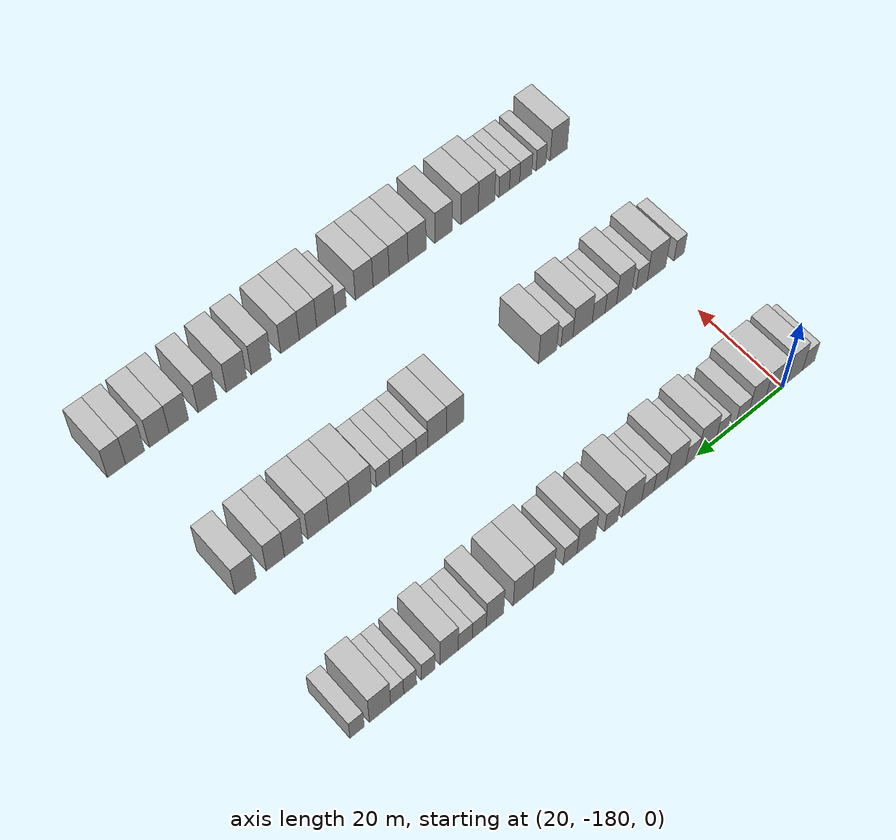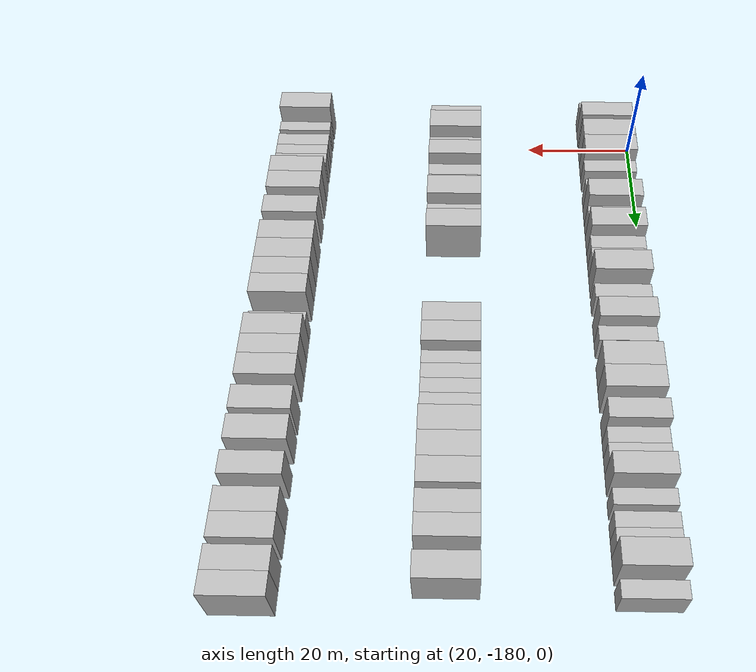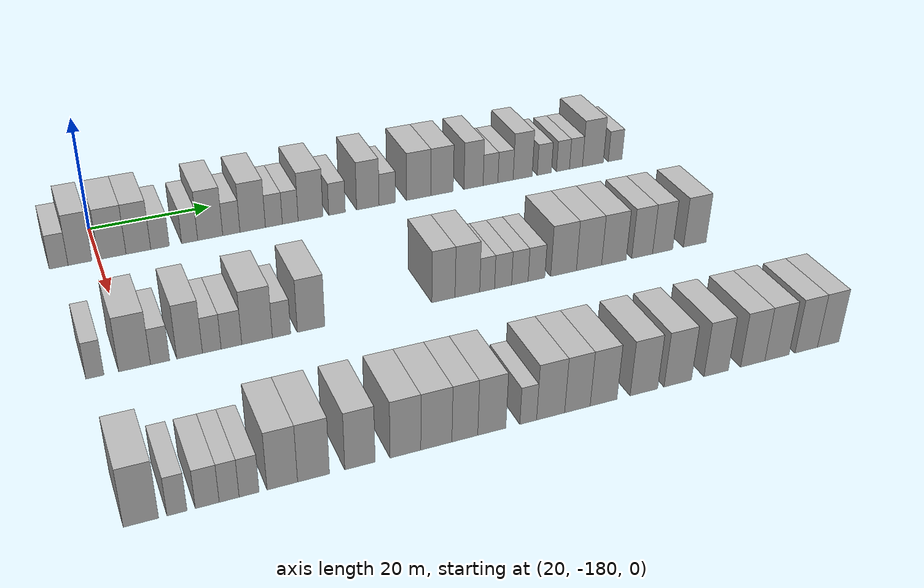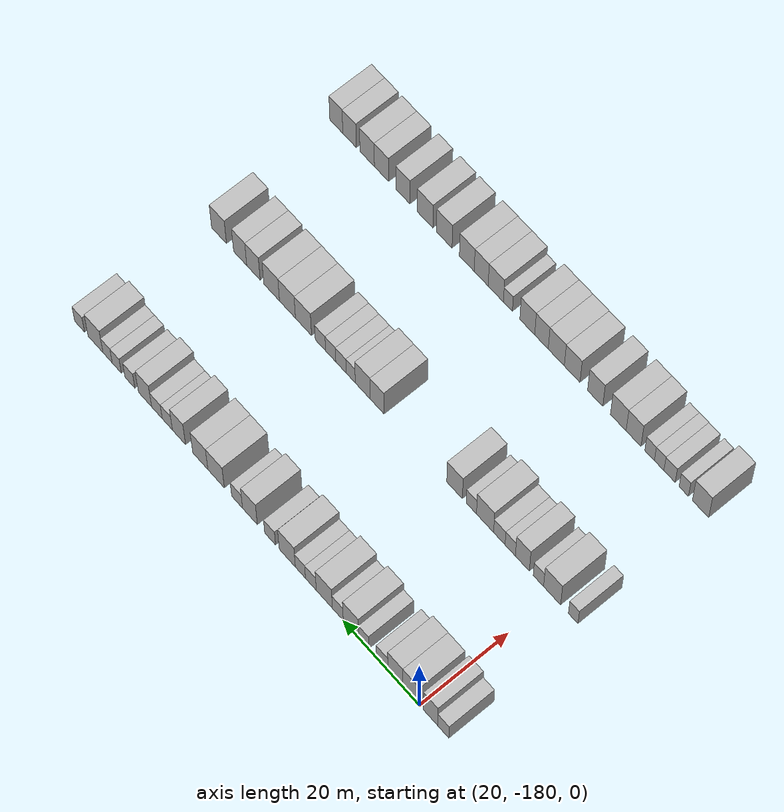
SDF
<sdf version="1.6">
 <world name="default">
  <model name="building_25">
   <static>1</static>
   <pose>25.0000 -186.1786 0 0.000000 0.000000 0.000000</pose>
   <link name="link">
    <pose>0 0 3.00 0 0 0</pose>
    <collision name="collision"><geometry><box><size>10.0000 2.8938 6.0000</size></box></geometry></collision>
    <visual name="visual">
     <cast_shadows>0</cast_shadows>
     <geometry><box><size>10.0000 2.8938 6.0000</size></box></geometry>
     <material>
      <script>
       <uri>model://HANNAS_wall/materials/scripts</uri>
       <uri>model://HANNAS_wall/materials/textures</uri>
       <name>vrc/HANNAS_wall</name>
      </script>
     </material>
    </visual>
   </link>
  </model>
  <model name="building_26">
   <static>1</static>
   <pose>25.0000 -182.8874 0 0.000000 0.000000 0.000000</pose>
   <link name="link">
    <pose>0 0 4.50 0 0 0</pose>
    <collision name="collision"><geometry><box><size>10.0000 3.6885 9.0000</size></box></geometry></collision>
    <visual name="visual">
     <cast_shadows>0</cast_shadows>
     <geometry><box><size>10.0000 3.6885 9.0000</size></box></geometry>
     <material>
      <script>
       <uri>model://HANNAS_wall/materials/scripts</uri>
       <uri>model://HANNAS_wall/materials/textures</uri>
       <name>vrc/HANNAS_wall</name>
      </script>
     </material>
    </visual>
   </link>
  </model>
  <model name="building_27">
   <static>1</static>
   <pose>25.0000 -177.8698 0 0.000000 0.000000 0.000000</pose>
   <link name="link">
    <pose>0 0 4.50 0 0 0</pose>
    <collision name="collision"><geometry><box><size>10.0000 4.3468 9.0000</size></box></geometry></collision>
    <visual name="visual">
     <cast_shadows>0</cast_shadows>
     <geometry><box><size>10.0000 4.3468 9.0000</size></box></geometry>
     <material>
      <script>
       <uri>model://HANNAS_wall/materials/scripts</uri>
       <uri>model://HANNAS_wall/materials/textures</uri>
       <name>vrc/HANNAS_wall</name>
      </script>
     </material>
    </visual>
   </link>
  </model>
  <model name="building_28">
   <static>1</static>
   <pose>25.0000 -173.7348 0 0.000000 0.000000 0.000000</pose>
   <link name="link">
    <pose>0 0 4.50 0 0 0</pose>
    <collision name="collision"><geometry><box><size>10.0000 3.9231 9.0000</size></box></geometry></collision>
    <visual name="visual">
     <cast_shadows>0</cast_shadows>
     <geometry><box><size>10.0000 3.9231 9.0000</size></box></geometry>
     <material>
      <script>
       <uri>model://HANNAS_wall/materials/scripts</uri>
       <uri>model://HANNAS_wall/materials/textures</uri>
       <name>vrc/HANNAS_wall</name>
      </script>
     </material>
    </visual>
   </link>
  </model>
  <model name="building_29">
   <static>1</static>
   <pose>25.0000 -170.2793 0 0.000000 0.000000 0.000000</pose>
   <link name="link">
    <pose>0 0 3.00 0 0 0</pose>
    <collision name="collision"><geometry><box><size>10.0000 2.9881 6.0000</size></box></geometry></collision>
    <visual name="visual">
     <cast_shadows>0</cast_shadows>
     <geometry><box><size>10.0000 2.9881 6.0000</size></box></geometry>
     <material>
      <script>
       <uri>model://HANNAS_wall/materials/scripts</uri>
       <uri>model://HANNAS_wall/materials/textures</uri>
       <name>vrc/HANNAS_wall</name>
      </script>
     </material>
    </visual>
   </link>
  </model>
  <model name="building_30">
   <static>1</static>
   <pose>25.0000 -165.4775 0 0.000000 0.000000 0.000000</pose>
   <link name="link">
    <pose>0 0 3.00 0 0 0</pose>
    <collision name="collision"><geometry><box><size>10.0000 2.6154 6.0000</size></box></geometry></collision>
    <visual name="visual">
     <cast_shadows>0</cast_shadows>
     <geometry><box><size>10.0000 2.6154 6.0000</size></box></geometry>
     <material>
      <script>
       <uri>model://HANNAS_wall/materials/scripts</uri>
       <uri>model://HANNAS_wall/materials/textures</uri>
       <name>vrc/HANNAS_wall</name>
      </script>
     </material>
    </visual>
   </link>
  </model>
  <model name="building_31">
   <static>1</static>
   <pose>25.0000 -162.1044 0 0.000000 0.000000 0.000000</pose>
   <link name="link">
    <pose>0 0 4.50 0 0 0</pose>
    <collision name="collision"><geometry><box><size>10.0000 4.1307 9.0000</size></box></geometry></collision>
    <visual name="visual">
     <cast_shadows>0</cast_shadows>
     <geometry><box><size>10.0000 4.1307 9.0000</size></box></geometry>
     <material>
      <script>
       <uri>model://HANNAS_wall/materials/scripts</uri>
       <uri>model://HANNAS_wall/materials/textures</uri>
       <name>vrc/HANNAS_wall</name>
      </script>
     </material>
    </visual>
   </link>
  </model>
  <model name="building_32">
   <static>1</static>
   <pose>25.0000 -158.6034 0 0.000000 0.000000 0.000000</pose>
   <link name="link">
    <pose>0 0 3.00 0 0 0</pose>
    <collision name="collision"><geometry><box><size>10.0000 2.8714 6.0000</size></box></geometry></collision>
    <visual name="visual">
     <cast_shadows>0</cast_shadows>
     <geometry><box><size>10.0000 2.8714 6.0000</size></box></geometry>
     <material>
      <script>
       <uri>model://HANNAS_wall/materials/scripts</uri>
       <uri>model://HANNAS_wall/materials/textures</uri>
       <name>vrc/HANNAS_wall</name>
      </script>
     </material>
    </visual>
   </link>
  </model>
  <model name="building_33">
   <static>1</static>
   <pose>25.0000 -155.0268 0 0.000000 0.000000 0.000000</pose>
   <link name="link">
    <pose>0 0 4.50 0 0 0</pose>
    <collision name="collision"><geometry><box><size>10.0000 4.2817 9.0000</size></box></geometry></collision>
    <visual name="visual">
     <cast_shadows>0</cast_shadows>
     <geometry><box><size>10.0000 4.2817 9.0000</size></box></geometry>
     <material>
      <script>
       <uri>model://HANNAS_wall/materials/scripts</uri>
       <uri>model://HANNAS_wall/materials/textures</uri>
       <name>vrc/HANNAS_wall</name>
      </script>
     </material>
    </visual>
   </link>
  </model>
  <model name="building_34">
   <static>1</static>
   <pose>25.0000 -151.4418 0 0.000000 0.000000 0.000000</pose>
   <link name="link">
    <pose>0 0 3.00 0 0 0</pose>
    <collision name="collision"><geometry><box><size>10.0000 2.8883 6.0000</size></box></geometry></collision>
    <visual name="visual">
     <cast_shadows>0</cast_shadows>
     <geometry><box><size>10.0000 2.8883 6.0000</size></box></geometry>
     <material>
      <script>
       <uri>model://HANNAS_wall/materials/scripts</uri>
       <uri>model://HANNAS_wall/materials/textures</uri>
       <name>vrc/HANNAS_wall</name>
      </script>
     </material>
    </visual>
   </link>
  </model>
  <model name="building_35">
   <static>1</static>
   <pose>25.0000 -148.6420 0 0.000000 0.000000 0.000000</pose>
   <link name="link">
    <pose>0 0 3.00 0 0 0</pose>
    <collision name="collision"><geometry><box><size>10.0000 2.7115 6.0000</size></box></geometry></collision>
    <visual name="visual">
     <cast_shadows>0</cast_shadows>
     <geometry><box><size>10.0000 2.7115 6.0000</size></box></geometry>
     <material>
      <script>
       <uri>model://HANNAS_wall/materials/scripts</uri>
       <uri>model://HANNAS_wall/materials/textures</uri>
       <name>vrc/HANNAS_wall</name>
      </script>
     </material>
    </visual>
   </link>
  </model>
  <model name="building_36">
   <static>1</static>
   <pose>25.0000 -145.1295 0 0.000000 0.000000 0.000000</pose>
   <link name="link">
    <pose>0 0 4.50 0 0 0</pose>
    <collision name="collision"><geometry><box><size>10.0000 4.3134 9.0000</size></box></geometry></collision>
    <visual name="visual">
     <cast_shadows>0</cast_shadows>
     <geometry><box><size>10.0000 4.3134 9.0000</size></box></geometry>
     <material>
      <script>
       <uri>model://HANNAS_wall/materials/scripts</uri>
       <uri>model://HANNAS_wall/materials/textures</uri>
       <name>vrc/HANNAS_wall</name>
      </script>
     </material>
    </visual>
   </link>
  </model>
  <model name="building_37">
   <static>1</static>
   <pose>25.0000 -140.5147 0 0.000000 0.000000 0.000000</pose>
   <link name="link">
    <pose>0 0 3.00 0 0 0</pose>
    <collision name="collision"><geometry><box><size>10.0000 2.9162 6.0000</size></box></geometry></collision>
    <visual name="visual">
     <cast_shadows>0</cast_shadows>
     <geometry><box><size>10.0000 2.9162 6.0000</size></box></geometry>
     <material>
      <script>
       <uri>model://HANNAS_wall/materials/scripts</uri>
       <uri>model://HANNAS_wall/materials/textures</uri>
       <name>vrc/HANNAS_wall</name>
      </script>
     </material>
    </visual>
   </link>
  </model>
  <model name="building_38">
   <static>1</static>
   <pose>25.0000 -135.0496 0 0.000000 0.000000 0.000000</pose>
   <link name="link">
    <pose>0 0 4.50 0 0 0</pose>
    <collision name="collision"><geometry><box><size>10.0000 4.0140 9.0000</size></box></geometry></collision>
    <visual name="visual">
     <cast_shadows>0</cast_shadows>
     <geometry><box><size>10.0000 4.0140 9.0000</size></box></geometry>
     <material>
      <script>
       <uri>model://HANNAS_wall/materials/scripts</uri>
       <uri>model://HANNAS_wall/materials/textures</uri>
       <name>vrc/HANNAS_wall</name>
      </script>
     </material>
    </visual>
   </link>
  </model>
  <model name="building_39">
   <static>1</static>
   <pose>25.0000 -131.5666 0 0.000000 0.000000 0.000000</pose>
   <link name="link">
    <pose>0 0 3.00 0 0 0</pose>
    <collision name="collision"><geometry><box><size>10.0000 2.9519 6.0000</size></box></geometry></collision>
    <visual name="visual">
     <cast_shadows>0</cast_shadows>
     <geometry><box><size>10.0000 2.9519 6.0000</size></box></geometry>
     <material>
      <script>
       <uri>model://HANNAS_wall/materials/scripts</uri>
       <uri>model://HANNAS_wall/materials/textures</uri>
       <name>vrc/HANNAS_wall</name>
      </script>
     </material>
    </visual>
   </link>
  </model>
  <model name="building_40">
   <static>1</static>
   <pose>25.0000 -125.8427 0 0.000000 0.000000 0.000000</pose>
   <link name="link">
    <pose>0 0 4.50 0 0 0</pose>
    <collision name="collision"><geometry><box><size>10.0000 4.4959 9.0000</size></box></geometry></collision>
    <visual name="visual">
     <cast_shadows>0</cast_shadows>
     <geometry><box><size>10.0000 4.4959 9.0000</size></box></geometry>
     <material>
      <script>
       <uri>model://HANNAS_wall/materials/scripts</uri>
       <uri>model://HANNAS_wall/materials/textures</uri>
       <name>vrc/HANNAS_wall</name>
      </script>
     </material>
    </visual>
   </link>
  </model>
  <model name="building_41">
   <static>1</static>
   <pose>25.0000 -121.5187 0 0.000000 0.000000 0.000000</pose>
   <link name="link">
    <pose>0 0 4.50 0 0 0</pose>
    <collision name="collision"><geometry><box><size>10.0000 4.1522 9.0000</size></box></geometry></collision>
    <visual name="visual">
     <cast_shadows>0</cast_shadows>
     <geometry><box><size>10.0000 4.1522 9.0000</size></box></geometry>
     <material>
      <script>
       <uri>model://HANNAS_wall/materials/scripts</uri>
       <uri>model://HANNAS_wall/materials/textures</uri>
       <name>vrc/HANNAS_wall</name>
      </script>
     </material>
    </visual>
   </link>
  </model>
  <model name="building_42">
   <static>1</static>
   <pose>25.0000 -115.6287 0 0.000000 0.000000 0.000000</pose>
   <link name="link">
    <pose>0 0 4.50 0 0 0</pose>
    <collision name="collision"><geometry><box><size>10.0000 3.6277 9.0000</size></box></geometry></collision>
    <visual name="visual">
     <cast_shadows>0</cast_shadows>
     <geometry><box><size>10.0000 3.6277 9.0000</size></box></geometry>
     <material>
      <script>
       <uri>model://HANNAS_wall/materials/scripts</uri>
       <uri>model://HANNAS_wall/materials/textures</uri>
       <name>vrc/HANNAS_wall</name>
      </script>
     </material>
    </visual>
   </link>
  </model>
  <model name="building_43">
   <static>1</static>
   <pose>25.0000 -112.4005 0 0.000000 0.000000 0.000000</pose>
   <link name="link">
    <pose>0 0 3.00 0 0 0</pose>
    <collision name="collision"><geometry><box><size>10.0000 2.8288 6.0000</size></box></geometry></collision>
    <visual name="visual">
     <cast_shadows>0</cast_shadows>
     <geometry><box><size>10.0000 2.8288 6.0000</size></box></geometry>
     <material>
      <script>
       <uri>model://HANNAS_wall/materials/scripts</uri>
       <uri>model://HANNAS_wall/materials/textures</uri>
       <name>vrc/HANNAS_wall</name>
      </script>
     </material>
    </visual>
   </link>
  </model>
  <model name="building_44">
   <static>1</static>
   <pose>25.0000 -109.5195 0 0.000000 0.000000 0.000000</pose>
   <link name="link">
    <pose>0 0 3.00 0 0 0</pose>
    <collision name="collision"><geometry><box><size>10.0000 2.9333 6.0000</size></box></geometry></collision>
    <visual name="visual">
     <cast_shadows>0</cast_shadows>
     <geometry><box><size>10.0000 2.9333 6.0000</size></box></geometry>
     <material>
      <script>
       <uri>model://HANNAS_wall/materials/scripts</uri>
       <uri>model://HANNAS_wall/materials/textures</uri>
       <name>vrc/HANNAS_wall</name>
      </script>
     </material>
    </visual>
   </link>
  </model>
  <model name="building_45">
   <static>1</static>
   <pose>25.0000 -106.2048 0 0.000000 0.000000 0.000000</pose>
   <link name="link">
    <pose>0 0 4.50 0 0 0</pose>
    <collision name="collision"><geometry><box><size>10.0000 3.6961 9.0000</size></box></geometry></collision>
    <visual name="visual">
     <cast_shadows>0</cast_shadows>
     <geometry><box><size>10.0000 3.6961 9.0000</size></box></geometry>
     <material>
      <script>
       <uri>model://HANNAS_wall/materials/scripts</uri>
       <uri>model://HANNAS_wall/materials/textures</uri>
       <name>vrc/HANNAS_wall</name>
      </script>
     </material>
    </visual>
   </link>
  </model>
  <model name="building_46">
   <static>1</static>
   <pose>25.0000 -101.9693 0 0.000000 0.000000 0.000000</pose>
   <link name="link">
    <pose>0 0 3.00 0 0 0</pose>
    <collision name="collision"><geometry><box><size>10.0000 2.7748 6.0000</size></box></geometry></collision>
    <visual name="visual">
     <cast_shadows>0</cast_shadows>
     <geometry><box><size>10.0000 2.7748 6.0000</size></box></geometry>
     <material>
      <script>
       <uri>model://HANNAS_wall/materials/scripts</uri>
       <uri>model://HANNAS_wall/materials/textures</uri>
       <name>vrc/HANNAS_wall</name>
      </script>
     </material>
    </visual>
   </link>
  </model>
  <model name="building_47">
   <static>1</static>
   <pose>25.0000 -98.2931 0 0.000000 0.000000 0.000000</pose>
   <link name="link">
    <pose>0 0 3.00 0 0 0</pose>
    <collision name="collision"><geometry><box><size>10.0000 2.5775 6.0000</size></box></geometry></collision>
    <visual name="visual">
     <cast_shadows>0</cast_shadows>
     <geometry><box><size>10.0000 2.5775 6.0000</size></box></geometry>
     <material>
      <script>
       <uri>model://HANNAS_wall/materials/scripts</uri>
       <uri>model://HANNAS_wall/materials/textures</uri>
       <name>vrc/HANNAS_wall</name>
      </script>
     </material>
    </visual>
   </link>
  </model>
  <model name="building_48">
   <static>1</static>
   <pose>25.0000 -95.7023 0 0.000000 0.000000 0.000000</pose>
   <link name="link">
    <pose>0 0 3.00 0 0 0</pose>
    <collision name="collision"><geometry><box><size>10.0000 2.6042 6.0000</size></box></geometry></collision>
    <visual name="visual">
     <cast_shadows>0</cast_shadows>
     <geometry><box><size>10.0000 2.6042 6.0000</size></box></geometry>
     <material>
      <script>
       <uri>model://HANNAS_wall/materials/scripts</uri>
       <uri>model://HANNAS_wall/materials/textures</uri>
       <name>vrc/HANNAS_wall</name>
      </script>
     </material>
    </visual>
   </link>
  </model>
  <model name="building_49">
   <static>1</static>
   <pose>25.0000 -92.2917 0 0.000000 0.000000 0.000000</pose>
   <link name="link">
    <pose>0 0 4.50 0 0 0</pose>
    <collision name="collision"><geometry><box><size>10.0000 4.2170 9.0000</size></box></geometry></collision>
    <visual name="visual">
     <cast_shadows>0</cast_shadows>
     <geometry><box><size>10.0000 4.2170 9.0000</size></box></geometry>
     <material>
      <script>
       <uri>model://HANNAS_wall/materials/scripts</uri>
       <uri>model://HANNAS_wall/materials/textures</uri>
       <name>vrc/HANNAS_wall</name>
      </script>
     </material>
    </visual>
   </link>
  </model>
  <model name="building_50">
   <static>1</static>
   <pose>25.0000 -87.7814 0 0.000000 0.000000 0.000000</pose>
   <link name="link">
    <pose>0 0 3.00 0 0 0</pose>
    <collision name="collision"><geometry><box><size>10.0000 2.8037 6.0000</size></box></geometry></collision>
    <visual name="visual">
     <cast_shadows>0</cast_shadows>
     <geometry><box><size>10.0000 2.8037 6.0000</size></box></geometry>
     <material>
      <script>
       <uri>model://HANNAS_wall/materials/scripts</uri>
       <uri>model://HANNAS_wall/materials/textures</uri>
       <name>vrc/HANNAS_wall</name>
      </script>
     </material>
    </visual>
   </link>
  </model>
  <model name="building_168">
   <static>1</static>
   <pose>55.0000 -185.1621 0 0.000000 0.000000 0.000000</pose>
   <link name="link">
    <pose>0 0 3.00 0 0 0</pose>
    <collision name="collision"><geometry><box><size>10.0000 2.4634 6.0000</size></box></geometry></collision>
    <visual name="visual">
     <cast_shadows>0</cast_shadows>
     <geometry><box><size>10.0000 2.4634 6.0000</size></box></geometry>
     <material>
      <script>
       <uri>model://HANNAS_wall/materials/scripts</uri>
       <uri>model://HANNAS_wall/materials/textures</uri>
       <name>vrc/HANNAS_wall</name>
      </script>
     </material>
    </visual>
   </link>
  </model>
  <model name="building_169">
   <static>1</static>
   <pose>55.0000 -179.7270 0 0.000000 0.000000 0.000000</pose>
   <link name="link">
    <pose>0 0 4.50 0 0 0</pose>
    <collision name="collision"><geometry><box><size>10.0000 4.4068 9.0000</size></box></geometry></collision>
    <visual name="visual">
     <cast_shadows>0</cast_shadows>
     <geometry><box><size>10.0000 4.4068 9.0000</size></box></geometry>
     <material>
      <script>
       <uri>model://HANNAS_wall/materials/scripts</uri>
       <uri>model://HANNAS_wall/materials/textures</uri>
       <name>vrc/HANNAS_wall</name>
      </script>
     </material>
    </visual>
   </link>
  </model>
  <model name="building_170">
   <static>1</static>
   <pose>55.0000 -176.1809 0 0.000000 0.000000 0.000000</pose>
   <link name="link">
    <pose>0 0 3.00 0 0 0</pose>
    <collision name="collision"><geometry><box><size>10.0000 2.6854 6.0000</size></box></geometry></collision>
    <visual name="visual">
     <cast_shadows>0</cast_shadows>
     <geometry><box><size>10.0000 2.6854 6.0000</size></box></geometry>
     <material>
      <script>
       <uri>model://HANNAS_wall/materials/scripts</uri>
       <uri>model://HANNAS_wall/materials/textures</uri>
       <name>vrc/HANNAS_wall</name>
      </script>
     </material>
    </visual>
   </link>
  </model>
  <model name="building_171">
   <static>1</static>
   <pose>55.0000 -172.0138 0 0.000000 0.000000 0.000000</pose>
   <link name="link">
    <pose>0 0 4.50 0 0 0</pose>
    <collision name="collision"><geometry><box><size>10.0000 3.6489 9.0000</size></box></geometry></collision>
    <visual name="visual">
     <cast_shadows>0</cast_shadows>
     <geometry><box><size>10.0000 3.6489 9.0000</size></box></geometry>
     <material>
      <script>
       <uri>model://HANNAS_wall/materials/scripts</uri>
       <uri>model://HANNAS_wall/materials/textures</uri>
       <name>vrc/HANNAS_wall</name>
      </script>
     </material>
    </visual>
   </link>
  </model>
  <model name="building_172">
   <static>1</static>
   <pose>55.0000 -168.8469 0 0.000000 0.000000 0.000000</pose>
   <link name="link">
    <pose>0 0 3.00 0 0 0</pose>
    <collision name="collision"><geometry><box><size>10.0000 2.6848 6.0000</size></box></geometry></collision>
    <visual name="visual">
     <cast_shadows>0</cast_shadows>
     <geometry><box><size>10.0000 2.6848 6.0000</size></box></geometry>
     <material>
      <script>
       <uri>model://HANNAS_wall/materials/scripts</uri>
       <uri>model://HANNAS_wall/materials/textures</uri>
       <name>vrc/HANNAS_wall</name>
      </script>
     </material>
    </visual>
   </link>
  </model>
  <model name="building_173">
   <static>1</static>
   <pose>55.0000 -166.0068 0 0.000000 0.000000 0.000000</pose>
   <link name="link">
    <pose>0 0 3.00 0 0 0</pose>
    <collision name="collision"><geometry><box><size>10.0000 2.9954 6.0000</size></box></geometry></collision>
    <visual name="visual">
     <cast_shadows>0</cast_shadows>
     <geometry><box><size>10.0000 2.9954 6.0000</size></box></geometry>
     <material>
      <script>
       <uri>model://HANNAS_wall/materials/scripts</uri>
       <uri>model://HANNAS_wall/materials/textures</uri>
       <name>vrc/HANNAS_wall</name>
      </script>
     </material>
    </visual>
   </link>
  </model>
  <model name="building_174">
   <static>1</static>
   <pose>55.0000 -162.2619 0 0.000000 0.000000 0.000000</pose>
   <link name="link">
    <pose>0 0 4.50 0 0 0</pose>
    <collision name="collision"><geometry><box><size>10.0000 4.4943 9.0000</size></box></geometry></collision>
    <visual name="visual">
     <cast_shadows>0</cast_shadows>
     <geometry><box><size>10.0000 4.4943 9.0000</size></box></geometry>
     <material>
      <script>
       <uri>model://HANNAS_wall/materials/scripts</uri>
       <uri>model://HANNAS_wall/materials/textures</uri>
       <name>vrc/HANNAS_wall</name>
      </script>
     </material>
    </visual>
   </link>
  </model>
  <model name="building_175">
   <static>1</static>
   <pose>55.0000 -158.6546 0 0.000000 0.000000 0.000000</pose>
   <link name="link">
    <pose>0 0 3.00 0 0 0</pose>
    <collision name="collision"><geometry><box><size>10.0000 2.7204 6.0000</size></box></geometry></collision>
    <visual name="visual">
     <cast_shadows>0</cast_shadows>
     <geometry><box><size>10.0000 2.7204 6.0000</size></box></geometry>
     <material>
      <script>
       <uri>model://HANNAS_wall/materials/scripts</uri>
       <uri>model://HANNAS_wall/materials/textures</uri>
       <name>vrc/HANNAS_wall</name>
      </script>
     </material>
    </visual>
   </link>
  </model>
  <model name="building_176">
   <static>1</static>
   <pose>55.0000 -154.2209 0 0.000000 0.000000 0.000000</pose>
   <link name="link">
    <pose>0 0 4.50 0 0 0</pose>
    <collision name="collision"><geometry><box><size>10.0000 4.1469 9.0000</size></box></geometry></collision>
    <visual name="visual">
     <cast_shadows>0</cast_shadows>
     <geometry><box><size>10.0000 4.1469 9.0000</size></box></geometry>
     <material>
      <script>
       <uri>model://HANNAS_wall/materials/scripts</uri>
       <uri>model://HANNAS_wall/materials/textures</uri>
       <name>vrc/HANNAS_wall</name>
      </script>
     </material>
    </visual>
   </link>
  </model>
  <model name="building_177">
   <static>1</static>
   <pose>55.0000 -133.5171 0 0.000000 0.000000 0.000000</pose>
   <link name="link">
    <pose>0 0 4.50 0 0 0</pose>
    <collision name="collision"><geometry><box><size>10.0000 3.7535 9.0000</size></box></geometry></collision>
    <visual name="visual">
     <cast_shadows>0</cast_shadows>
     <geometry><box><size>10.0000 3.7535 9.0000</size></box></geometry>
     <material>
      <script>
       <uri>model://HANNAS_wall/materials/scripts</uri>
       <uri>model://HANNAS_wall/materials/textures</uri>
       <name>vrc/HANNAS_wall</name>
      </script>
     </material>
    </visual>
   </link>
  </model>
  <model name="building_178">
   <static>1</static>
   <pose>55.0000 -129.6170 0 0.000000 0.000000 0.000000</pose>
   <link name="link">
    <pose>0 0 4.50 0 0 0</pose>
    <collision name="collision"><geometry><box><size>10.0000 4.0467 9.0000</size></box></geometry></collision>
    <visual name="visual">
     <cast_shadows>0</cast_shadows>
     <geometry><box><size>10.0000 4.0467 9.0000</size></box></geometry>
     <material>
      <script>
       <uri>model://HANNAS_wall/materials/scripts</uri>
       <uri>model://HANNAS_wall/materials/textures</uri>
       <name>vrc/HANNAS_wall</name>
      </script>
     </material>
    </visual>
   </link>
  </model>
  <model name="building_179">
   <static>1</static>
   <pose>55.0000 -126.3591 0 0.000000 0.000000 0.000000</pose>
   <link name="link">
    <pose>0 0 3.00 0 0 0</pose>
    <collision name="collision"><geometry><box><size>10.0000 2.4690 6.0000</size></box></geometry></collision>
    <visual name="visual">
     <cast_shadows>0</cast_shadows>
     <geometry><box><size>10.0000 2.4690 6.0000</size></box></geometry>
     <material>
      <script>
       <uri>model://HANNAS_wall/materials/scripts</uri>
       <uri>model://HANNAS_wall/materials/textures</uri>
       <name>vrc/HANNAS_wall</name>
      </script>
     </material>
    </visual>
   </link>
  </model>
  <model name="building_180">
   <static>1</static>
   <pose>55.0000 -123.7001 0 0.000000 0.000000 0.000000</pose>
   <link name="link">
    <pose>0 0 3.00 0 0 0</pose>
    <collision name="collision"><geometry><box><size>10.0000 2.8490 6.0000</size></box></geometry></collision>
    <visual name="visual">
     <cast_shadows>0</cast_shadows>
     <geometry><box><size>10.0000 2.8490 6.0000</size></box></geometry>
     <material>
      <script>
       <uri>model://HANNAS_wall/materials/scripts</uri>
       <uri>model://HANNAS_wall/materials/textures</uri>
       <name>vrc/HANNAS_wall</name>
      </script>
     </material>
    </visual>
   </link>
  </model>
  <model name="building_181">
   <static>1</static>
   <pose>55.0000 -120.8833 0 0.000000 0.000000 0.000000</pose>
   <link name="link">
    <pose>0 0 3.00 0 0 0</pose>
    <collision name="collision"><geometry><box><size>10.0000 2.7846 6.0000</size></box></geometry></collision>
    <visual name="visual">
     <cast_shadows>0</cast_shadows>
     <geometry><box><size>10.0000 2.7846 6.0000</size></box></geometry>
     <material>
      <script>
       <uri>model://HANNAS_wall/materials/scripts</uri>
       <uri>model://HANNAS_wall/materials/textures</uri>
       <name>vrc/HANNAS_wall</name>
      </script>
     </material>
    </visual>
   </link>
  </model>
  <model name="building_182">
   <static>1</static>
   <pose>55.0000 -118.0626 0 0.000000 0.000000 0.000000</pose>
   <link name="link">
    <pose>0 0 3.00 0 0 0</pose>
    <collision name="collision"><geometry><box><size>10.0000 2.8569 6.0000</size></box></geometry></collision>
    <visual name="visual">
     <cast_shadows>0</cast_shadows>
     <geometry><box><size>10.0000 2.8569 6.0000</size></box></geometry>
     <material>
      <script>
       <uri>model://HANNAS_wall/materials/scripts</uri>
       <uri>model://HANNAS_wall/materials/textures</uri>
       <name>vrc/HANNAS_wall</name>
      </script>
     </material>
    </visual>
   </link>
  </model>
  <model name="building_183">
   <static>1</static>
   <pose>55.0000 -113.4149 0 0.000000 0.000000 0.000000</pose>
   <link name="link">
    <pose>0 0 4.50 0 0 0</pose>
    <collision name="collision"><geometry><box><size>10.0000 4.4385 9.0000</size></box></geometry></collision>
    <visual name="visual">
     <cast_shadows>0</cast_shadows>
     <geometry><box><size>10.0000 4.4385 9.0000</size></box></geometry>
     <material>
      <script>
       <uri>model://HANNAS_wall/materials/scripts</uri>
       <uri>model://HANNAS_wall/materials/textures</uri>
       <name>vrc/HANNAS_wall</name>
      </script>
     </material>
    </visual>
   </link>
  </model>
  <model name="building_184">
   <static>1</static>
   <pose>55.0000 -108.9845 0 0.000000 0.000000 0.000000</pose>
   <link name="link">
    <pose>0 0 4.50 0 0 0</pose>
    <collision name="collision"><geometry><box><size>10.0000 4.4224 9.0000</size></box></geometry></collision>
    <visual name="visual">
     <cast_shadows>0</cast_shadows>
     <geometry><box><size>10.0000 4.4224 9.0000</size></box></geometry>
     <material>
      <script>
       <uri>model://HANNAS_wall/materials/scripts</uri>
       <uri>model://HANNAS_wall/materials/textures</uri>
       <name>vrc/HANNAS_wall</name>
      </script>
     </material>
    </visual>
   </link>
  </model>
  <model name="building_185">
   <static>1</static>
   <pose>55.0000 -104.5920 0 0.000000 0.000000 0.000000</pose>
   <link name="link">
    <pose>0 0 4.50 0 0 0</pose>
    <collision name="collision"><geometry><box><size>10.0000 4.3624 9.0000</size></box></geometry></collision>
    <visual name="visual">
     <cast_shadows>0</cast_shadows>
     <geometry><box><size>10.0000 4.3624 9.0000</size></box></geometry>
     <material>
      <script>
       <uri>model://HANNAS_wall/materials/scripts</uri>
       <uri>model://HANNAS_wall/materials/textures</uri>
       <name>vrc/HANNAS_wall</name>
      </script>
     </material>
    </visual>
   </link>
  </model>
  <model name="building_186">
   <static>1</static>
   <pose>55.0000 -99.5316 0 0.000000 0.000000 0.000000</pose>
   <link name="link">
    <pose>0 0 4.50 0 0 0</pose>
    <collision name="collision"><geometry><box><size>10.0000 3.7584 9.0000</size></box></geometry></collision>
    <visual name="visual">
     <cast_shadows>0</cast_shadows>
     <geometry><box><size>10.0000 3.7584 9.0000</size></box></geometry>
     <material>
      <script>
       <uri>model://HANNAS_wall/materials/scripts</uri>
       <uri>model://HANNAS_wall/materials/textures</uri>
       <name>vrc/HANNAS_wall</name>
      </script>
     </material>
    </visual>
   </link>
  </model>
  <model name="building_187">
   <static>1</static>
   <pose>55.0000 -95.8123 0 0.000000 0.000000 0.000000</pose>
   <link name="link">
    <pose>0 0 4.50 0 0 0</pose>
    <collision name="collision"><geometry><box><size>10.0000 3.6802 9.0000</size></box></geometry></collision>
    <visual name="visual">
     <cast_shadows>0</cast_shadows>
     <geometry><box><size>10.0000 3.6802 9.0000</size></box></geometry>
     <material>
      <script>
       <uri>model://HANNAS_wall/materials/scripts</uri>
       <uri>model://HANNAS_wall/materials/textures</uri>
       <name>vrc/HANNAS_wall</name>
      </script>
     </material>
    </visual>
   </link>
  </model>
  <model name="building_188">
   <static>1</static>
   <pose>55.0000 -89.8772 0 0.000000 0.000000 0.000000</pose>
   <link name="link">
    <pose>0 0 4.50 0 0 0</pose>
    <collision name="collision"><geometry><box><size>10.0000 4.1898 9.0000</size></box></geometry></collision>
    <visual name="visual">
     <cast_shadows>0</cast_shadows>
     <geometry><box><size>10.0000 4.1898 9.0000</size></box></geometry>
     <material>
      <script>
       <uri>model://HANNAS_wall/materials/scripts</uri>
       <uri>model://HANNAS_wall/materials/textures</uri>
       <name>vrc/HANNAS_wall</name>
      </script>
     </material>
    </visual>
   </link>
  </model>
  <model name="building_301">
   <static>1</static>
   <pose>85.0000 -184.3636 0 0.000000 0.000000 0.000000</pose>
   <link name="link">
    <pose>0 0 4.50 0 0 0</pose>
    <collision name="collision"><geometry><box><size>10.0000 4.1853 9.0000</size></box></geometry></collision>
    <visual name="visual">
     <cast_shadows>0</cast_shadows>
     <geometry><box><size>10.0000 4.1853 9.0000</size></box></geometry>
     <material>
      <script>
       <uri>model://HANNAS_wall/materials/scripts</uri>
       <uri>model://HANNAS_wall/materials/textures</uri>
       <name>vrc/HANNAS_wall</name>
      </script>
     </material>
    </visual>
   </link>
  </model>
  <model name="building_302">
   <static>1</static>
   <pose>85.0000 -180.0651 0 0.000000 0.000000 0.000000</pose>
   <link name="link">
    <pose>0 0 3.00 0 0 0</pose>
    <collision name="collision"><geometry><box><size>10.0000 2.4118 6.0000</size></box></geometry></collision>
    <visual name="visual">
     <cast_shadows>0</cast_shadows>
     <geometry><box><size>10.0000 2.4118 6.0000</size></box></geometry>
     <material>
      <script>
       <uri>model://HANNAS_wall/materials/scripts</uri>
       <uri>model://HANNAS_wall/materials/textures</uri>
       <name>vrc/HANNAS_wall</name>
      </script>
     </material>
    </visual>
   </link>
  </model>
  <model name="building_303">
   <static>1</static>
   <pose>85.0000 -176.4006 0 0.000000 0.000000 0.000000</pose>
   <link name="link">
    <pose>0 0 3.00 0 0 0</pose>
    <collision name="collision"><geometry><box><size>10.0000 2.9173 6.0000</size></box></geometry></collision>
    <visual name="visual">
     <cast_shadows>0</cast_shadows>
     <geometry><box><size>10.0000 2.9173 6.0000</size></box></geometry>
     <material>
      <script>
       <uri>model://HANNAS_wall/materials/scripts</uri>
       <uri>model://HANNAS_wall/materials/textures</uri>
       <name>vrc/HANNAS_wall</name>
      </script>
     </material>
    </visual>
   </link>
  </model>
  <model name="building_304">
   <static>1</static>
   <pose>85.0000 -173.7142 0 0.000000 0.000000 0.000000</pose>
   <link name="link">
    <pose>0 0 3.00 0 0 0</pose>
    <collision name="collision"><geometry><box><size>10.0000 2.4554 6.0000</size></box></geometry></collision>
    <visual name="visual">
     <cast_shadows>0</cast_shadows>
     <geometry><box><size>10.0000 2.4554 6.0000</size></box></geometry>
     <material>
      <script>
       <uri>model://HANNAS_wall/materials/scripts</uri>
       <uri>model://HANNAS_wall/materials/textures</uri>
       <name>vrc/HANNAS_wall</name>
      </script>
     </material>
    </visual>
   </link>
  </model>
  <model name="building_305">
   <static>1</static>
   <pose>85.0000 -171.2412 0 0.000000 0.000000 0.000000</pose>
   <link name="link">
    <pose>0 0 3.00 0 0 0</pose>
    <collision name="collision"><geometry><box><size>10.0000 2.4908 6.0000</size></box></geometry></collision>
    <visual name="visual">
     <cast_shadows>0</cast_shadows>
     <geometry><box><size>10.0000 2.4908 6.0000</size></box></geometry>
     <material>
      <script>
       <uri>model://HANNAS_wall/materials/scripts</uri>
       <uri>model://HANNAS_wall/materials/textures</uri>
       <name>vrc/HANNAS_wall</name>
      </script>
     </material>
    </visual>
   </link>
  </model>
  <model name="building_306">
   <static>1</static>
   <pose>85.0000 -167.0631 0 0.000000 0.000000 0.000000</pose>
   <link name="link">
    <pose>0 0 4.50 0 0 0</pose>
    <collision name="collision"><geometry><box><size>10.0000 3.8653 9.0000</size></box></geometry></collision>
    <visual name="visual">
     <cast_shadows>0</cast_shadows>
     <geometry><box><size>10.0000 3.8653 9.0000</size></box></geometry>
     <material>
      <script>
       <uri>model://HANNAS_wall/materials/scripts</uri>
       <uri>model://HANNAS_wall/materials/textures</uri>
       <name>vrc/HANNAS_wall</name>
      </script>
     </material>
    </visual>
   </link>
  </model>
  <model name="building_307">
   <static>1</static>
   <pose>85.0000 -163.0788 0 0.000000 0.000000 0.000000</pose>
   <link name="link">
    <pose>0 0 4.50 0 0 0</pose>
    <collision name="collision"><geometry><box><size>10.0000 4.1033 9.0000</size></box></geometry></collision>
    <visual name="visual">
     <cast_shadows>0</cast_shadows>
     <geometry><box><size>10.0000 4.1033 9.0000</size></box></geometry>
     <material>
      <script>
       <uri>model://HANNAS_wall/materials/scripts</uri>
       <uri>model://HANNAS_wall/materials/textures</uri>
       <name>vrc/HANNAS_wall</name>
      </script>
     </material>
    </visual>
   </link>
  </model>
  <model name="building_308">
   <static>1</static>
   <pose>85.0000 -157.0279 0 0.000000 0.000000 0.000000</pose>
   <link name="link">
    <pose>0 0 4.50 0 0 0</pose>
    <collision name="collision"><geometry><box><size>10.0000 3.9984 9.0000</size></box></geometry></collision>
    <visual name="visual">
     <cast_shadows>0</cast_shadows>
     <geometry><box><size>10.0000 3.9984 9.0000</size></box></geometry>
     <material>
      <script>
       <uri>model://HANNAS_wall/materials/scripts</uri>
       <uri>model://HANNAS_wall/materials/textures</uri>
       <name>vrc/HANNAS_wall</name>
      </script>
     </material>
    </visual>
   </link>
  </model>
  <model name="building_309">
   <static>1</static>
   <pose>85.0000 -150.9544 0 0.000000 0.000000 0.000000</pose>
   <link name="link">
    <pose>0 0 4.50 0 0 0</pose>
    <collision name="collision"><geometry><box><size>10.0000 4.1487 9.0000</size></box></geometry></collision>
    <visual name="visual">
     <cast_shadows>0</cast_shadows>
     <geometry><box><size>10.0000 4.1487 9.0000</size></box></geometry>
     <material>
      <script>
       <uri>model://HANNAS_wall/materials/scripts</uri>
       <uri>model://HANNAS_wall/materials/textures</uri>
       <name>vrc/HANNAS_wall</name>
      </script>
     </material>
    </visual>
   </link>
  </model>
  <model name="building_310">
   <static>1</static>
   <pose>85.0000 -146.7435 0 0.000000 0.000000 0.000000</pose>
   <link name="link">
    <pose>0 0 4.50 0 0 0</pose>
    <collision name="collision"><geometry><box><size>10.0000 4.2731 9.0000</size></box></geometry></collision>
    <visual name="visual">
     <cast_shadows>0</cast_shadows>
     <geometry><box><size>10.0000 4.2731 9.0000</size></box></geometry>
     <material>
      <script>
       <uri>model://HANNAS_wall/materials/scripts</uri>
       <uri>model://HANNAS_wall/materials/textures</uri>
       <name>vrc/HANNAS_wall</name>
      </script>
     </material>
    </visual>
   </link>
  </model>
  <model name="building_311">
   <static>1</static>
   <pose>85.0000 -142.8061 0 0.000000 0.000000 0.000000</pose>
   <link name="link">
    <pose>0 0 4.50 0 0 0</pose>
    <collision name="collision"><geometry><box><size>10.0000 3.6017 9.0000</size></box></geometry></collision>
    <visual name="visual">
     <cast_shadows>0</cast_shadows>
     <geometry><box><size>10.0000 3.6017 9.0000</size></box></geometry>
     <material>
      <script>
       <uri>model://HANNAS_wall/materials/scripts</uri>
       <uri>model://HANNAS_wall/materials/textures</uri>
       <name>vrc/HANNAS_wall</name>
      </script>
     </material>
    </visual>
   </link>
  </model>
  <model name="building_312">
   <static>1</static>
   <pose>85.0000 -139.0136 0 0.000000 0.000000 0.000000</pose>
   <link name="link">
    <pose>0 0 4.50 0 0 0</pose>
    <collision name="collision"><geometry><box><size>10.0000 3.9833 9.0000</size></box></geometry></collision>
    <visual name="visual">
     <cast_shadows>0</cast_shadows>
     <geometry><box><size>10.0000 3.9833 9.0000</size></box></geometry>
     <material>
      <script>
       <uri>model://HANNAS_wall/materials/scripts</uri>
       <uri>model://HANNAS_wall/materials/textures</uri>
       <name>vrc/HANNAS_wall</name>
      </script>
     </material>
    </visual>
   </link>
  </model>
  <model name="building_313">
   <static>1</static>
   <pose>85.0000 -133.8127 0 0.000000 0.000000 0.000000</pose>
   <link name="link">
    <pose>0 0 3.00 0 0 0</pose>
    <collision name="collision"><geometry><box><size>10.0000 2.4185 6.0000</size></box></geometry></collision>
    <visual name="visual">
     <cast_shadows>0</cast_shadows>
     <geometry><box><size>10.0000 2.4185 6.0000</size></box></geometry>
     <material>
      <script>
       <uri>model://HANNAS_wall/materials/scripts</uri>
       <uri>model://HANNAS_wall/materials/textures</uri>
       <name>vrc/HANNAS_wall</name>
      </script>
     </material>
    </visual>
   </link>
  </model>
  <model name="building_314">
   <static>1</static>
   <pose>85.0000 -130.5536 0 0.000000 0.000000 0.000000</pose>
   <link name="link">
    <pose>0 0 4.50 0 0 0</pose>
    <collision name="collision"><geometry><box><size>10.0000 4.0997 9.0000</size></box></geometry></collision>
    <visual name="visual">
     <cast_shadows>0</cast_shadows>
     <geometry><box><size>10.0000 4.0997 9.0000</size></box></geometry>
     <material>
      <script>
       <uri>model://HANNAS_wall/materials/scripts</uri>
       <uri>model://HANNAS_wall/materials/textures</uri>
       <name>vrc/HANNAS_wall</name>
      </script>
     </material>
    </visual>
   </link>
  </model>
  <model name="building_315">
   <static>1</static>
   <pose>85.0000 -126.6096 0 0.000000 0.000000 0.000000</pose>
   <link name="link">
    <pose>0 0 4.50 0 0 0</pose>
    <collision name="collision"><geometry><box><size>10.0000 3.7884 9.0000</size></box></geometry></collision>
    <visual name="visual">
     <cast_shadows>0</cast_shadows>
     <geometry><box><size>10.0000 3.7884 9.0000</size></box></geometry>
     <material>
      <script>
       <uri>model://HANNAS_wall/materials/scripts</uri>
       <uri>model://HANNAS_wall/materials/textures</uri>
       <name>vrc/HANNAS_wall</name>
      </script>
     </material>
    </visual>
   </link>
  </model>
  <model name="building_316">
   <static>1</static>
   <pose>85.0000 -122.6990 0 0.000000 0.000000 0.000000</pose>
   <link name="link">
    <pose>0 0 4.50 0 0 0</pose>
    <collision name="collision"><geometry><box><size>10.0000 4.0327 9.0000</size></box></geometry></collision>
    <visual name="visual">
     <cast_shadows>0</cast_shadows>
     <geometry><box><size>10.0000 4.0327 9.0000</size></box></geometry>
     <material>
      <script>
       <uri>model://HANNAS_wall/materials/scripts</uri>
       <uri>model://HANNAS_wall/materials/textures</uri>
       <name>vrc/HANNAS_wall</name>
      </script>
     </material>
    </visual>
   </link>
  </model>
  <model name="building_317">
   <static>1</static>
   <pose>85.0000 -116.5614 0 0.000000 0.000000 0.000000</pose>
   <link name="link">
    <pose>0 0 4.50 0 0 0</pose>
    <collision name="collision"><geometry><box><size>10.0000 4.2426 9.0000</size></box></geometry></collision>
    <visual name="visual">
     <cast_shadows>0</cast_shadows>
     <geometry><box><size>10.0000 4.2426 9.0000</size></box></geometry>
     <material>
      <script>
       <uri>model://HANNAS_wall/materials/scripts</uri>
       <uri>model://HANNAS_wall/materials/textures</uri>
       <name>vrc/HANNAS_wall</name>
      </script>
     </material>
    </visual>
   </link>
  </model>
  <model name="building_318">
   <static>1</static>
   <pose>85.0000 -111.2932 0 0.000000 0.000000 0.000000</pose>
   <link name="link">
    <pose>0 0 4.50 0 0 0</pose>
    <collision name="collision"><geometry><box><size>10.0000 4.2939 9.0000</size></box></geometry></collision>
    <visual name="visual">
     <cast_shadows>0</cast_shadows>
     <geometry><box><size>10.0000 4.2939 9.0000</size></box></geometry>
     <material>
      <script>
       <uri>model://HANNAS_wall/materials/scripts</uri>
       <uri>model://HANNAS_wall/materials/textures</uri>
       <name>vrc/HANNAS_wall</name>
      </script>
     </material>
    </visual>
   </link>
  </model>
  <model name="building_319">
   <static>1</static>
   <pose>85.0000 -105.1985 0 0.000000 0.000000 0.000000</pose>
   <link name="link">
    <pose>0 0 4.50 0 0 0</pose>
    <collision name="collision"><geometry><box><size>10.0000 3.8954 9.0000</size></box></geometry></collision>
    <visual name="visual">
     <cast_shadows>0</cast_shadows>
     <geometry><box><size>10.0000 3.8954 9.0000</size></box></geometry>
     <material>
      <script>
       <uri>model://HANNAS_wall/materials/scripts</uri>
       <uri>model://HANNAS_wall/materials/textures</uri>
       <name>vrc/HANNAS_wall</name>
      </script>
     </material>
    </visual>
   </link>
  </model>
  <model name="building_320">
   <static>1</static>
   <pose>85.0000 -99.2681 0 0.000000 0.000000 0.000000</pose>
   <link name="link">
    <pose>0 0 4.50 0 0 0</pose>
    <collision name="collision"><geometry><box><size>10.0000 3.9655 9.0000</size></box></geometry></collision>
    <visual name="visual">
     <cast_shadows>0</cast_shadows>
     <geometry><box><size>10.0000 3.9655 9.0000</size></box></geometry>
     <material>
      <script>
       <uri>model://HANNAS_wall/materials/scripts</uri>
       <uri>model://HANNAS_wall/materials/textures</uri>
       <name>vrc/HANNAS_wall</name>
      </script>
     </material>
    </visual>
   </link>
  </model>
  <model name="building_321">
   <static>1</static>
   <pose>85.0000 -95.2688 0 0.000000 0.000000 0.000000</pose>
   <link name="link">
    <pose>0 0 4.50 0 0 0</pose>
    <collision name="collision"><geometry><box><size>10.0000 4.0332 9.0000</size></box></geometry></collision>
    <visual name="visual">
     <cast_shadows>0</cast_shadows>
     <geometry><box><size>10.0000 4.0332 9.0000</size></box></geometry>
     <material>
      <script>
       <uri>model://HANNAS_wall/materials/scripts</uri>
       <uri>model://HANNAS_wall/materials/textures</uri>
       <name>vrc/HANNAS_wall</name>
      </script>
     </material>
    </visual>
   </link>
  </model>
  <model name="building_322">
   <static>1</static>
   <pose>85.0000 -90.3537 0 0.000000 0.000000 0.000000</pose>
   <link name="link">
    <pose>0 0 4.50 0 0 0</pose>
    <collision name="collision"><geometry><box><size>10.0000 3.7970 9.0000</size></box></geometry></collision>
    <visual name="visual">
     <cast_shadows>0</cast_shadows>
     <geometry><box><size>10.0000 3.7970 9.0000</size></box></geometry>
     <material>
      <script>
       <uri>model://HANNAS_wall/materials/scripts</uri>
       <uri>model://HANNAS_wall/materials/textures</uri>
       <name>vrc/HANNAS_wall</name>
      </script>
     </material>
    </visual>
   </link>
  </model>
  <model name="building_323">
   <static>1</static>
   <pose>85.0000 -86.6264 0 0.000000 0.000000 0.000000</pose>
   <link name="link">
    <pose>0 0 4.50 0 0 0</pose>
    <collision name="collision"><geometry><box><size>10.0000 3.6575 9.0000</size></box></geometry></collision>
    <visual name="visual">
     <cast_shadows>0</cast_shadows>
     <geometry><box><size>10.0000 3.6575 9.0000</size></box></geometry>
     <material>
      <script>
       <uri>model://HANNAS_wall/materials/scripts</uri>
       <uri>model://HANNAS_wall/materials/textures</uri>
       <name>vrc/HANNAS_wall</name>
      </script>
     </material>
    </visual>
   </link>
  </model>
 </world>
</sdf>
